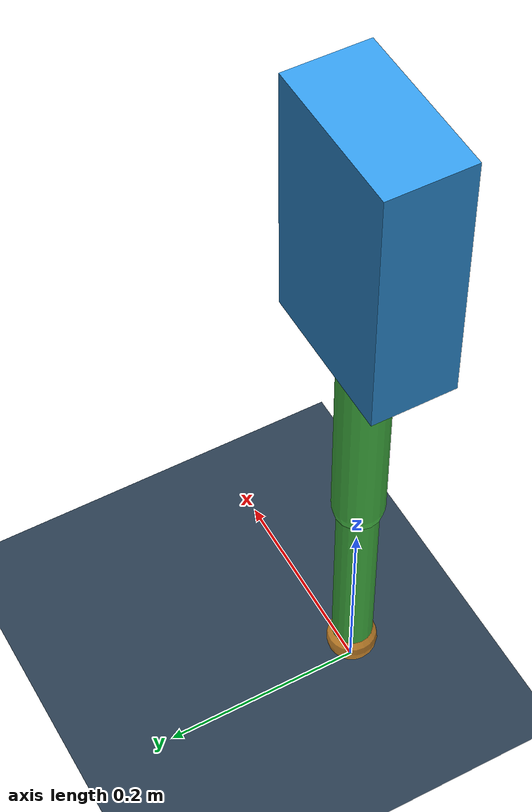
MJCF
<mujoco model="biped2d_zmp">
  <compiler angle="radian"/>

  <option gravity="0 0 -9.81" integrator="RK4" timestep="0.0005">
    <flag override="enable"/>
  </option>

  <default>
    <joint damping="0.1"/>
    <geom contype="1" conaffinity="1" condim="3" friction="0.5 0.5 0.1"
          solref="0.00001 1" solimp="0.95 0.99 0.0001"/>
  </default>

  <visual>
    <global offwidth="1920" offheight="1080"/>
  </visual>

  <asset>
    <texture type="skybox" builtin="gradient" rgb1="0.4 0.6 0.8" rgb2="0.1 0.1 0.2" width="512" height="3072"/>
    <texture type="2d" name="ground_tex" builtin="checker" rgb1="0.2 0.3 0.4" rgb2="0.1 0.15 0.2" width="300" height="300"/>
    <material name="ground_mat" texture="ground_tex" texuniform="true" texrepeat="5 5"/>
  </asset>

  <worldbody>
    <light pos="0 0 3" dir="0 0 -1" directional="true"/>
    <camera name="side" pos="0 -3 0.8" xyaxes="1 0 0 0 0 1" mode="trackcom"/>

    <!-- Ground plane -->
    <geom name="floor" type="plane" size="50 50 0.1" material="ground_mat"/>

    <!-- Robot trunk -->
    <body name="trunk" pos="0 0 0.6">
      <freejoint name="root"/>
      <!-- Trunk: a=0.25m (height), b=0.15m (width), mass=8kg -->
      <geom name="trunk_geom" type="box" size="0.075 0.04 0.125" mass="8.0"
            rgba="0.2 0.6 0.9 1" contype="0" conaffinity="0"/>

      <!-- Left leg -->
      <body name="left_thigh" pos="0 0 -0.125">
        <!-- Hip joint q1: CCW positive, range -120 to +30 deg -->
        <joint name="q1" type="hinge" axis="0 1 0" range="-2.094 0.524" damping="0.1"/>
        <!-- Thigh: l=0.22m, m=0.25kg, I=(1/12)*m*l^2 = 0.001008 -->
        <geom type="capsule" fromto="0 0 0 0 0 -0.22" size="0.025" mass="0.25"
              rgba="0.3 0.8 0.3 1" contype="0" conaffinity="0"/>
        <inertial pos="0 0 -0.11" mass="0.25" diaginertia="0.001008 0.001008 0.0001"/>

        <body name="left_shank" pos="0 0 -0.22">
          <!-- Knee joint q2: range 0 to 160 deg -->
          <joint name="q2" type="hinge" axis="0 1 0" range="0 2.793" damping="0.1"/>
          <!-- Shank: l=0.22m, m=0.25kg -->
          <geom type="capsule" fromto="0 0 0 0 0 -0.22" size="0.02" mass="0.25"
                rgba="0.3 0.8 0.3 1" contype="0" conaffinity="0"/>
          <inertial pos="0 0 -0.11" mass="0.25" diaginertia="0.001008 0.001008 0.0001"/>
          <!-- Foot contact sphere -->
          <geom name="l_toe" type="sphere" pos="0 0 -0.22" size="0.025"
                rgba="0.9 0.6 0.2 1" mass="0.01"/>
        </body>
      </body>

      <!-- Right leg -->
      <body name="right_thigh" pos="0 0 -0.125">
        <!-- Hip joint q3 -->
        <joint name="q3" type="hinge" axis="0 1 0" range="-2.094 0.524" damping="0.1"/>
        <geom type="capsule" fromto="0 0 0 0 0 -0.22" size="0.025" mass="0.25"
              rgba="0.8 0.3 0.3 1" contype="0" conaffinity="0"/>
        <inertial pos="0 0 -0.11" mass="0.25" diaginertia="0.001008 0.001008 0.0001"/>

        <body name="right_shank" pos="0 0 -0.22">
          <!-- Knee joint q4 -->
          <joint name="q4" type="hinge" axis="0 1 0" range="0 2.793" damping="0.1"/>
          <geom type="capsule" fromto="0 0 0 0 0 -0.22" size="0.02" mass="0.25"
                rgba="0.8 0.3 0.3 1" contype="0" conaffinity="0"/>
          <inertial pos="0 0 -0.11" mass="0.25" diaginertia="0.001008 0.001008 0.0001"/>
          <geom name="r_toe" type="sphere" pos="0 0 -0.22" size="0.025"
                rgba="0.9 0.6 0.2 1" mass="0.01"/>
        </body>
      </body>
    </body>
  </worldbody>

  <actuator>
    <!-- Hip motors: torque limit 30 Nm -->
    <motor name="hip_l" joint="q1" gear="1" ctrllimited="true" ctrlrange="-30 30"/>
    <!-- Knee motors: torque limit 60 Nm -->
    <motor name="knee_l" joint="q2" gear="1" ctrllimited="true" ctrlrange="-60 60"/>
    <motor name="hip_r" joint="q3" gear="1" ctrllimited="true" ctrlrange="-30 30"/>
    <motor name="knee_r" joint="q4" gear="1" ctrllimited="true" ctrlrange="-60 60"/>
  </actuator>
</mujoco>
